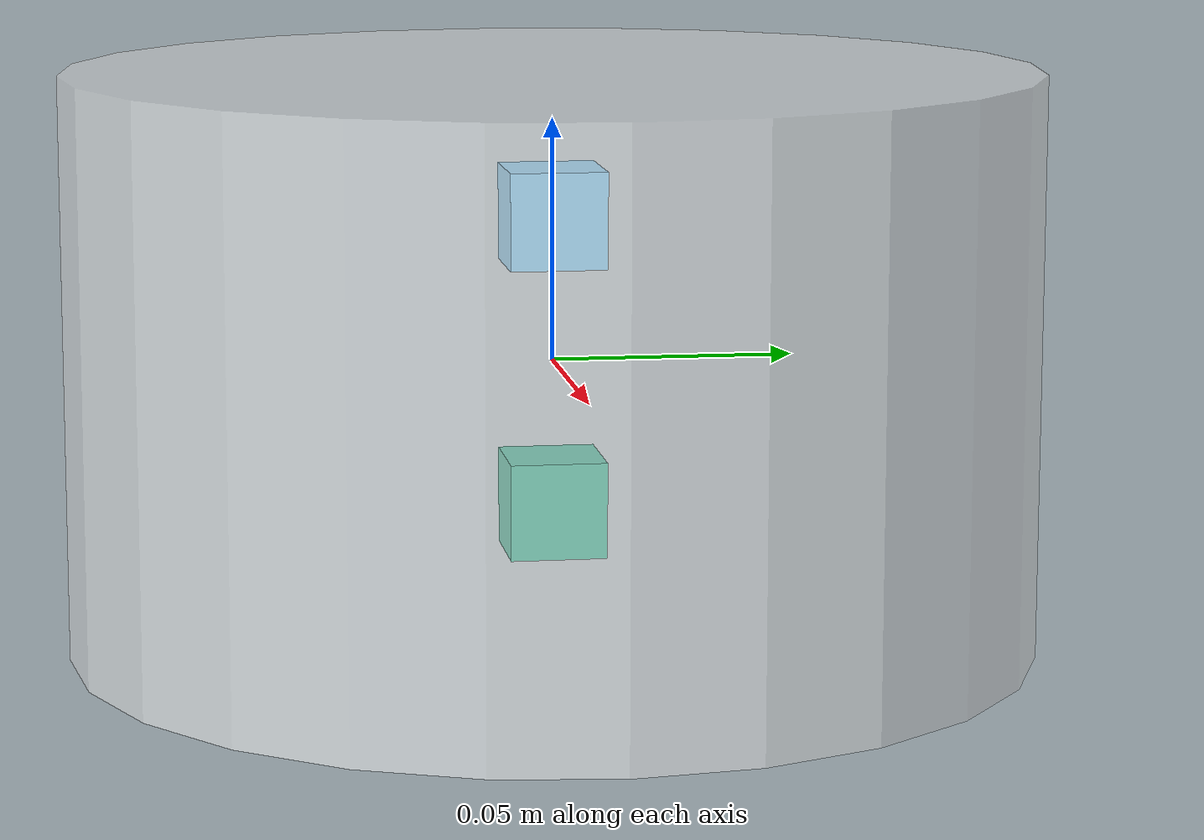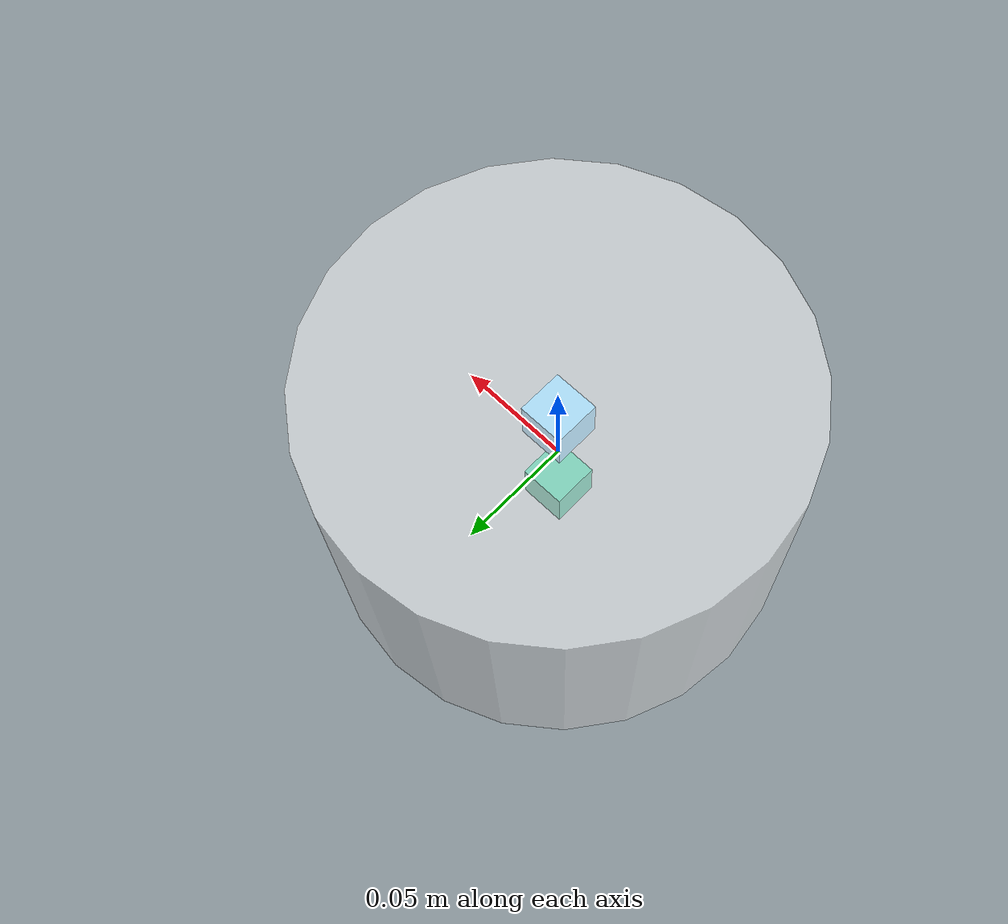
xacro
<?xml version="1.0"?>
<robot xmlns:xacro="http://www.ros.org/wiki/xacro" name="first_robot">
    <!-- 机器人身体部分 -->
    <xacro:macro name="base_link" params="length radius">
        <link name="base_link">
            <!-- 部件外观描述 -->
            <visual>
                <!-- 沿自己几何中心的偏移与旋转量 -->
                <origin xyz="0 0 0" rpy="0 0 0" />
                <!-- 几何形状 -->
                <geometry>
                    <!-- 圆柱体，半径0.1m，高度 0.12m -->
                    <cylinder length="${length}" radius="${radius}" />
                </geometry>
                <!-- 材质子标签-白色 -->
                <material name="white">
                    <color rgba="1.0 1.0 1.0 0.5" />
                </material>
            </visual>
        </link>
    </xacro:macro>
    <!-- 机器人IMU部件 -->
    <xacro:macro name="imu_link" params="imu_name xyz">
        <link name="${imu_name}_link">
            <visual>
                <origin xyz="0 0 0" rpy="0 0 0" />
                <geometry>
                    <box size="0.02 0.02 0.02" />
                </geometry>
            </visual>
            <material name="black">
                <color rgba="0 0 0 0.5" />
            </material>
        </link>
        <!-- 机器人关节 -->
        <joint name="${imu_name}_joint" type="fixed">
            <!-- 父部件 -->
            <parent link="base_link" />
            <!-- 子部件 -->
            <child link="${imu_name}_link" />
            <!-- 子部件相对父部件的平移和旋转 -->
            <origin xyz="${xyz}" rpy="0 0 0" />
        </joint>
    </xacro:macro>

    <xacro:base_link length="0.12" radius="0.1"/>
    <!-- 生成两个imu部件 -->
    <xacro:imu_link imu_name="imu_up" xyz="0.0 0.0 0.03"/>
    <xacro:imu_link imu_name="imu_down" xyz="0.0 0.0 -0.03"/>
</robot>
